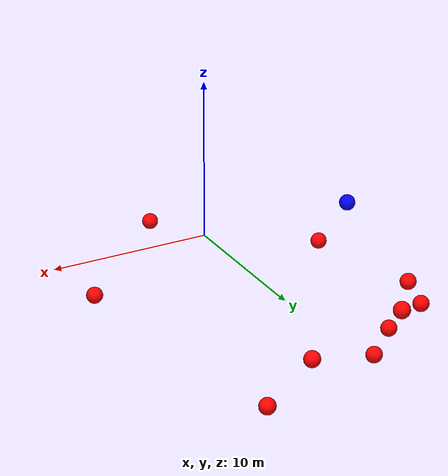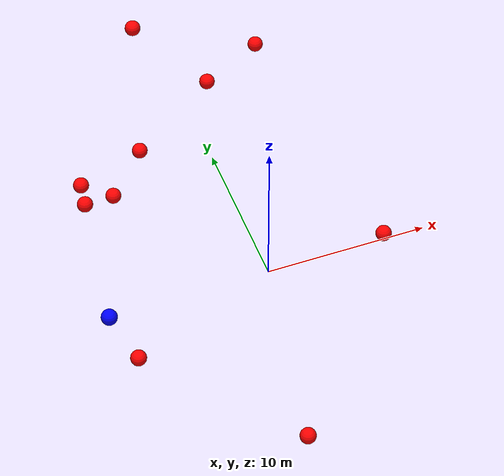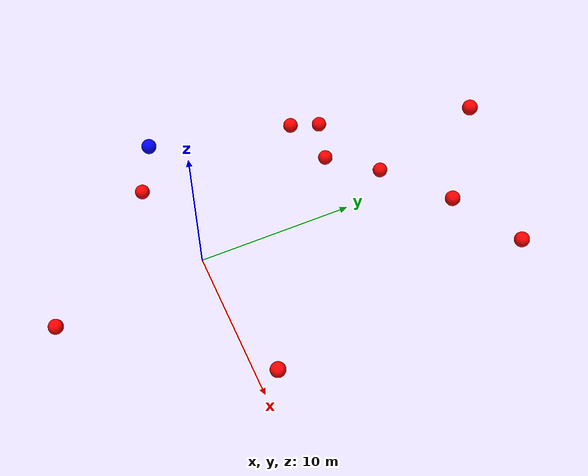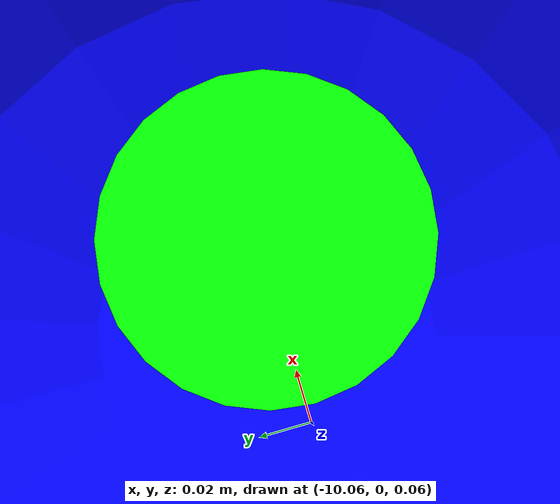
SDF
<?xml version="1.0" ?>
<sdf version="1.8">
    <world name="3d_world">
        <physics name="1ms" type="ode">
            <max_step_size>0.001</max_step_size>
            <real_time_factor>1.0</real_time_factor>
            <real_time_update_rate>1000.0</real_time_update_rate>
        </physics>
        <gravity>0 0 0</gravity>

        <plugin
            filename="gz-sim-physics-system"
            name="gz::sim::v8::systems::Physics">
        </plugin>
        <plugin
            filename="libignition-gazebo-user-commands-system.so"
            name="ignition::gazebo::systems::UserCommands">
        </plugin>
        <plugin
            filename="gz-sim-scene-broadcaster-system"
            name="gz::sim::systems::SceneBroadcaster">
        </plugin>
        <plugin
            filename="gz-sim-sensors-system"
            name="gz::sim::systems::Sensors">
            <render_engine>ogre2</render_engine>
        </plugin>

        <light type="directional" name="sun">
            <cast_shadows>true</cast_shadows>
            <pose>0 0 10 0 0 0</pose>
            <diffuse>0.8 0.8 0.8 1</diffuse>
            <specular>0.2 0.2 0.2 1</specular>
            <attenuation>
                <range>1000</range>
                <constant>0.9</constant>
                <linear>0.01</linear>
                <quadratic>0.001</quadratic>
            </attenuation>
            <direction>-0.5 0.1 -0.9</direction>
        </light>

        <!-- AGENTE -->
        <model name='agente' canonical_link='chassis'>
            <pose relative_to='world'>-10.0 0 0.0 0 0 0</pose>
            <link name='chassis'>
                <pose relative_to='__model__'>0.0 0 0.0 0 0 0</pose>
                <inertial>
                    <mass>1.14395</mass>
                    <inertia>
                        <ixx>0.095329</ixx>
                        <ixy>0</ixy>
                        <ixz>0</ixz>
                        <iyy>0.381317</iyy>
                        <iyz>0</iyz>
                        <izz>0.476646</izz>
                    </inertia>
                </inertial>
                <visual name='visual'>
                    <geometry>
                        <sphere>
                            <radius>0.5</radius>
                        </sphere>
                    </geometry>
                    <material>
                        <ambient>0.0 0.0 1.0 1</ambient>
                        <diffuse>0.0 0.0 1.0 1</diffuse>
                        <specular>0.0 0.0 1.0 1</specular>
                    </material>
                </visual>
                <collision name='collision'>
                    <geometry>
                        <sphere>
                            <radius>0.5</radius>
                        </sphere>
                    </geometry>
                </collision>
                <enable_gravity>false</enable_gravity>
            </link>

            <link name='lidar_link'>
                <pose relative_to='chassis'>0.0 0 0.1 0 0 0</pose>
                <inertial>
                    <mass>0.1</mass>
                    <inertia>
                        <ixx>0.000166667</ixx>
                        <iyy>0.000166667</iyy>
                        <izz>0.000166667</izz>
                    </inertia>
                </inertial>
                <collision name='collision'>
                    <geometry>
                        <cylinder>
                            <radius>0.05</radius>
                            <length>0.1</length>
                        </cylinder>
                    </geometry>
                </collision>
                <visual name='visual'>
                    <geometry>
                        <cylinder>
                            <radius>0.05</radius>
                            <length>0.1</length>
                        </cylinder>
                    </geometry>
                    <material>
                        <ambient>0.0 1.0 0.0 1</ambient>
                        <diffuse>0.0 1.0 0.0 1</diffuse>
                        <specular>0.0 1.0 0.0 1</specular>
                    </material>
                </visual>
                <sensor name="lidar" type="gpu_lidar">
                    <topic>scan</topic>
                    <update_rate>10</update_rate>
                    <lidar>
                        <scan>
                            <horizontal>
                                <samples>5000</samples>
                                <resolution>1</resolution>
                                <min_angle>-3.14159</min_angle>
                                <max_angle>3.14159</max_angle>
                            </horizontal>
                        </scan>
                        <range>
                            <min>0.1</min>
                            <max>10.0</max>
                            <resolution>0.01</resolution>
                        </range>
                    </lidar>
                    <visualize>true</visualize>
                    <always_on>true</always_on>
                    <update_rate>10</update_rate>
                    <pose_frame>lidar</pose_frame>
                </sensor>
                <enable_gravity>false</enable_gravity>
            </link>

            <joint name="lidar_joint" type="fixed">
                <parent>chassis</parent>
                <child>lidar_link</child>
            </joint>

            <plugin
                filename="ignition-gazebo-joint-state-publisher-system"
                name="ignition::gazebo::systems::JointStatePublisher">
            </plugin>
            <plugin
                filename="ignition-gazebo-odometry-publisher-system"
                name="ignition::gazebo::systems::OdometryPublisher">
                <dimensions>3</dimensions>
            </plugin>
            <plugin
                filename="ignition-gazebo-velocity-control-system"
                name="ignition::gazebo::systems::VelocityControl">
                <initial_linear>0.0 0 0</initial_linear>
                <initial_angular>0 0 0.0</initial_angular>
            </plugin>
            <plugin
                filename="libignition-gazebo-pose-publisher-system.so"
                name="ignition::gazebo::systems::PosePublisher">
                <topic>/agente/pose</topic>
                <frame_id>agente</frame_id>
                <update_rate>30</update_rate>
            </plugin>
        </model>

        <!-- OBSTACLE 1 -->
        <model name='obstacle_1' canonical_link='obstacle'>
            <static>false</static>
            <pose relative_to='world'>8.17 1.57 -1.41 0 0 0</pose>
            <link name='obstacle'>
                <pose relative_to='__model__'>0.0 0 0.0 0 0 0</pose>
                <visual name='visual'>
                    <geometry>
                        <sphere>
                            <radius>0.50</radius>
                        </sphere>
                    </geometry>
                    <material>
                        <ambient>1.0 0.0 0.0 1</ambient>
                        <diffuse>1.0 0.0 0.0 1</diffuse>
                        <specular>1.0 0.0 0.0 1</specular>
                    </material>
                </visual>
                <collision name='collision'>
                    <geometry>
                        <sphere>
                            <radius>0.50</radius>
                        </sphere>
                    </geometry>
                </collision>
                <enable_gravity>false</enable_gravity>
            </link>

            <plugin
                filename="ignition-gazebo-velocity-control-system"
                name="ignition::gazebo::systems::VelocityControl">
                <initial_linear>-1.97 -0.25 0.22</initial_linear>
                <initial_angular>0 0 0</initial_angular>
            </plugin>

            <plugin
                filename="ignition-gazebo-odometry-publisher-system"
                name="ignition::gazebo::systems::OdometryPublisher">
                <dimensions>3</dimensions>
            </plugin>
        </model>

        <!-- OBSTACLE 2 -->
        <model name='obstacle_2' canonical_link='obstacle'>
            <static>false</static>
            <pose relative_to='world'>2.04 16.70 -0.15 0 0 0</pose>
            <link name='obstacle'>
                <pose relative_to='__model__'>0.0 0 0.0 0 0 0</pose>
                <visual name='visual'>
                    <geometry>
                        <sphere>
                            <radius>0.50</radius>
                        </sphere>
                    </geometry>
                    <material>
                        <ambient>1.0 0.0 0.0 1</ambient>
                        <diffuse>1.0 0.0 0.0 1</diffuse>
                        <specular>1.0 0.0 0.0 1</specular>
                    </material>
                </visual>
                <collision name='collision'>
                    <geometry>
                        <sphere>
                            <radius>0.50</radius>
                        </sphere>
                    </geometry>
                </collision>
                <enable_gravity>false</enable_gravity>
            </link>

            <plugin
                filename="ignition-gazebo-velocity-control-system"
                name="ignition::gazebo::systems::VelocityControl">
                <initial_linear>0.32 -1.97 0.02</initial_linear>
                <initial_angular>0 0 0</initial_angular>
            </plugin>

            <plugin
                filename="ignition-gazebo-odometry-publisher-system"
                name="ignition::gazebo::systems::OdometryPublisher">
                <dimensions>3</dimensions>
            </plugin>
        </model>

        <!-- OBSTACLE 3 -->
        <model name='obstacle_3' canonical_link='obstacle'>
            <static>false</static>
            <pose relative_to='world'>-1.24 -9.79 -3.39 0 0 0</pose>
            <link name='obstacle'>
                <pose relative_to='__model__'>0.0 0 0.0 0 0 0</pose>
                <visual name='visual'>
                    <geometry>
                        <sphere>
                            <radius>0.50</radius>
                        </sphere>
                    </geometry>
                    <material>
                        <ambient>1.0 0.0 0.0 1</ambient>
                        <diffuse>1.0 0.0 0.0 1</diffuse>
                        <specular>1.0 0.0 0.0 1</specular>
                    </material>
                </visual>
                <collision name='collision'>
                    <geometry>
                        <sphere>
                            <radius>0.50</radius>
                        </sphere>
                    </geometry>
                </collision>
                <enable_gravity>false</enable_gravity>
            </link>

            <plugin
                filename="ignition-gazebo-velocity-control-system"
                name="ignition::gazebo::systems::VelocityControl">
                <initial_linear>0.34 1.86 0.64</initial_linear>
                <initial_angular>0 0 0</initial_angular>
            </plugin>

            <plugin
                filename="ignition-gazebo-odometry-publisher-system"
                name="ignition::gazebo::systems::OdometryPublisher">
                <dimensions>3</dimensions>
            </plugin>
        </model>

        <!-- OBSTACLE 4 -->
        <model name='obstacle_4' canonical_link='obstacle'>
            <static>false</static>
            <pose relative_to='world'>-6.17 11.45 -2.61 0 0 0</pose>
            <link name='obstacle'>
                <pose relative_to='__model__'>0.0 0 0.0 0 0 0</pose>
                <visual name='visual'>
                    <geometry>
                        <sphere>
                            <radius>0.50</radius>
                        </sphere>
                    </geometry>
                    <material>
                        <ambient>1.0 0.0 0.0 1</ambient>
                        <diffuse>1.0 0.0 0.0 1</diffuse>
                        <specular>1.0 0.0 0.0 1</specular>
                    </material>
                </visual>
                <collision name='collision'>
                    <geometry>
                        <sphere>
                            <radius>0.50</radius>
                        </sphere>
                    </geometry>
                </collision>
                <enable_gravity>false</enable_gravity>
            </link>

            <plugin
                filename="ignition-gazebo-velocity-control-system"
                name="ignition::gazebo::systems::VelocityControl">
                <initial_linear>1.37 -1.42 0.32</initial_linear>
                <initial_angular>0 0 0</initial_angular>
            </plugin>

            <plugin
                filename="ignition-gazebo-odometry-publisher-system"
                name="ignition::gazebo::systems::OdometryPublisher">
                <dimensions>3</dimensions>
            </plugin>
        </model>

        <!-- OBSTACLE 5 -->
        <model name='obstacle_5' canonical_link='obstacle'>
            <static>false</static>
            <pose relative_to='world'>-8.74 -1.29 -2.88 0 0 0</pose>
            <link name='obstacle'>
                <pose relative_to='__model__'>0.0 0 0.0 0 0 0</pose>
                <visual name='visual'>
                    <geometry>
                        <sphere>
                            <radius>0.50</radius>
                        </sphere>
                    </geometry>
                    <material>
                        <ambient>1.0 0.0 0.0 1</ambient>
                        <diffuse>1.0 0.0 0.0 1</diffuse>
                        <specular>1.0 0.0 0.0 1</specular>
                    </material>
                </visual>
                <collision name='collision'>
                    <geometry>
                        <sphere>
                            <radius>0.50</radius>
                        </sphere>
                    </geometry>
                </collision>
                <enable_gravity>false</enable_gravity>
            </link>

            <plugin
                filename="ignition-gazebo-velocity-control-system"
                name="ignition::gazebo::systems::VelocityControl">
                <initial_linear>1.93 0.21 0.47</initial_linear>
                <initial_angular>0 0 0</initial_angular>
            </plugin>

            <plugin
                filename="ignition-gazebo-odometry-publisher-system"
                name="ignition::gazebo::systems::OdometryPublisher">
                <dimensions>3</dimensions>
            </plugin>
        </model>

        <!-- OBSTACLE 6 -->
        <model name='obstacle_6' canonical_link='obstacle'>
            <static>false</static>
            <pose relative_to='world'>-3.43 14.35 -2.33 0 0 0</pose>
            <link name='obstacle'>
                <pose relative_to='__model__'>0.0 0 0.0 0 0 0</pose>
                <visual name='visual'>
                    <geometry>
                        <sphere>
                            <radius>0.50</radius>
                        </sphere>
                    </geometry>
                    <material>
                        <ambient>1.0 0.0 0.0 1</ambient>
                        <diffuse>1.0 0.0 0.0 1</diffuse>
                        <specular>1.0 0.0 0.0 1</specular>
                    </material>
                </visual>
                <collision name='collision'>
                    <geometry>
                        <sphere>
                            <radius>0.50</radius>
                        </sphere>
                    </geometry>
                </collision>
                <enable_gravity>false</enable_gravity>
            </link>

            <plugin
                filename="ignition-gazebo-velocity-control-system"
                name="ignition::gazebo::systems::VelocityControl">
                <initial_linear>0.98 -1.72 0.28</initial_linear>
                <initial_angular>0 0 0</initial_angular>
            </plugin>

            <plugin
                filename="ignition-gazebo-odometry-publisher-system"
                name="ignition::gazebo::systems::OdometryPublisher">
                <dimensions>3</dimensions>
            </plugin>
        </model>

        <!-- OBSTACLE 7 -->
        <model name='obstacle_7' canonical_link='obstacle'>
            <static>false</static>
            <pose relative_to='world'>-8.46 9.78 -0.82 0 0 0</pose>
            <link name='obstacle'>
                <pose relative_to='__model__'>0.0 0 0.0 0 0 0</pose>
                <visual name='visual'>
                    <geometry>
                        <sphere>
                            <radius>0.50</radius>
                        </sphere>
                    </geometry>
                    <material>
                        <ambient>1.0 0.0 0.0 1</ambient>
                        <diffuse>1.0 0.0 0.0 1</diffuse>
                        <specular>1.0 0.0 0.0 1</specular>
                    </material>
                </visual>
                <collision name='collision'>
                    <geometry>
                        <sphere>
                            <radius>0.50</radius>
                        </sphere>
                    </geometry>
                </collision>
                <enable_gravity>false</enable_gravity>
            </link>

            <plugin
                filename="ignition-gazebo-velocity-control-system"
                name="ignition::gazebo::systems::VelocityControl">
                <initial_linear>1.65 -1.12 0.09</initial_linear>
                <initial_angular>0 0 0</initial_angular>
            </plugin>

            <plugin
                filename="ignition-gazebo-odometry-publisher-system"
                name="ignition::gazebo::systems::OdometryPublisher">
                <dimensions>3</dimensions>
            </plugin>
        </model>

        <!-- OBSTACLE 8 -->
        <model name='obstacle_8' canonical_link='obstacle'>
            <static>false</static>
            <pose relative_to='world'>-8.11 11.82 -1.29 0 0 0</pose>
            <link name='obstacle'>
                <pose relative_to='__model__'>0.0 0 0.0 0 0 0</pose>
                <visual name='visual'>
                    <geometry>
                        <sphere>
                            <radius>0.50</radius>
                        </sphere>
                    </geometry>
                    <material>
                        <ambient>1.0 0.0 0.0 1</ambient>
                        <diffuse>1.0 0.0 0.0 1</diffuse>
                        <specular>1.0 0.0 0.0 1</specular>
                    </material>
                </visual>
                <collision name='collision'>
                    <geometry>
                        <sphere>
                            <radius>0.50</radius>
                        </sphere>
                    </geometry>
                </collision>
                <enable_gravity>false</enable_gravity>
            </link>

            <plugin
                filename="ignition-gazebo-velocity-control-system"
                name="ignition::gazebo::systems::VelocityControl">
                <initial_linear>1.08 -1.68 0.18</initial_linear>
                <initial_angular>0 0 0</initial_angular>
            </plugin>

            <plugin
                filename="ignition-gazebo-odometry-publisher-system"
                name="ignition::gazebo::systems::OdometryPublisher">
                <dimensions>3</dimensions>
            </plugin>
        </model>

        <!-- OBSTACLE 9 -->
        <model name='obstacle_9' canonical_link='obstacle'>
            <static>false</static>
            <pose relative_to='world'>6.39 19.42 -0.68 0 0 0</pose>
            <link name='obstacle'>
                <pose relative_to='__model__'>0.0 0 0.0 0 0 0</pose>
                <visual name='visual'>
                    <geometry>
                        <sphere>
                            <radius>0.50</radius>
                        </sphere>
                    </geometry>
                    <material>
                        <ambient>1.0 0.0 0.0 1</ambient>
                        <diffuse>1.0 0.0 0.0 1</diffuse>
                        <specular>1.0 0.0 0.0 1</specular>
                    </material>
                </visual>
                <collision name='collision'>
                    <geometry>
                        <sphere>
                            <radius>0.50</radius>
                        </sphere>
                    </geometry>
                </collision>
                <enable_gravity>false</enable_gravity>
            </link>

            <plugin
                filename="ignition-gazebo-velocity-control-system"
                name="ignition::gazebo::systems::VelocityControl">
                <initial_linear>-0.75 -1.85 0.07</initial_linear>
                <initial_angular>0 0 0</initial_angular>
            </plugin>

            <plugin
                filename="ignition-gazebo-odometry-publisher-system"
                name="ignition::gazebo::systems::OdometryPublisher">
                <dimensions>3</dimensions>
            </plugin>
        </model>

        <!-- OBSTACLE 10 -->
        <model name='obstacle_10' canonical_link='obstacle'>
            <static>false</static>
            <pose relative_to='world'>-1.91 19.64 3.28 0 0 0</pose>
            <link name='obstacle'>
                <pose relative_to='__model__'>0.0 0 0.0 0 0 0</pose>
                <visual name='visual'>
                    <geometry>
                        <sphere>
                            <radius>0.50</radius>
                        </sphere>
                    </geometry>
                    <material>
                        <ambient>1.0 0.0 0.0 1</ambient>
                        <diffuse>1.0 0.0 0.0 1</diffuse>
                        <specular>1.0 0.0 0.0 1</specular>
                    </material>
                </visual>
                <collision name='collision'>
                    <geometry>
                        <sphere>
                            <radius>0.50</radius>
                        </sphere>
                    </geometry>
                </collision>
                <enable_gravity>false</enable_gravity>
            </link>

            <plugin
                filename="ignition-gazebo-velocity-control-system"
                name="ignition::gazebo::systems::VelocityControl">
                <initial_linear>0.75 -1.83 -0.31</initial_linear>
                <initial_angular>0 0 0</initial_angular>
            </plugin>

            <plugin
                filename="ignition-gazebo-odometry-publisher-system"
                name="ignition::gazebo::systems::OdometryPublisher">
                <dimensions>3</dimensions>
            </plugin>
        </model>

    </world>
</sdf>
